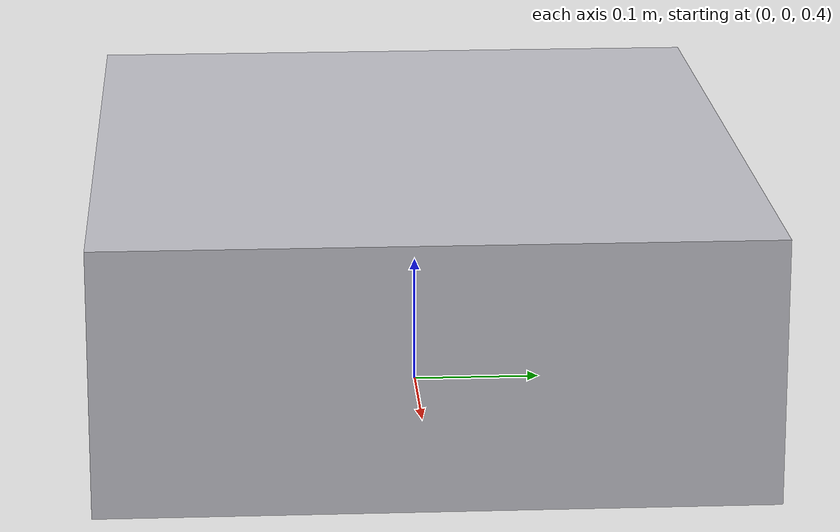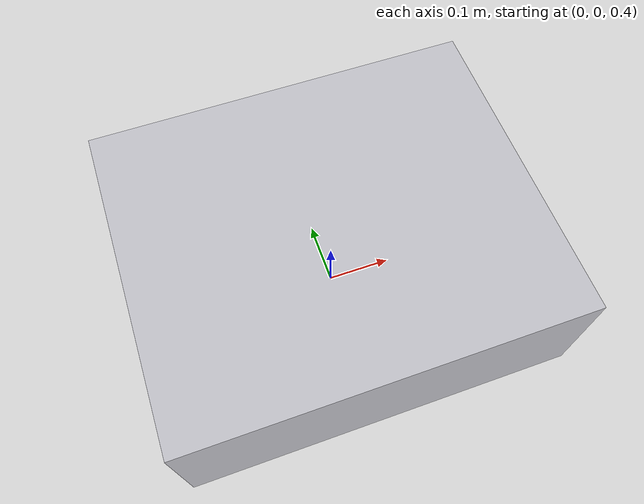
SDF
<?xml version="1.0" ?>
<sdf version="1.5">
  <model name="rocker_bogie">
    <pose>0 0 0.5 0 0 0</pose>
    <static>false</static>

    <link name="base_link">
      <inertial>
        <mass>12.548</mass>
        <pose>0.2 0.1 0.451 0 0 0</pose>
        <inertia>
          <ixx>0.08978</ixx>
          <ixy>0.0</ixy>
          <ixz>6e-06</ixz>
          <iyy>0.224081</iyy>
          <iyz>0.0</iyz>
          <izz>0.272077</izz>
        </inertia>
      </inertial>
      <collision name="collision">
        <pose>0.2 0.1 0.45 0 0 0</pose>
        <geometry>
          <box>
            <size>0.60 0.50 0.20</size>
          </box>
        </geometry>
      </collision>
      <visual name="base_visual">
        <pose>0 0 0 0 0 0</pose>
        <geometry>
          <box>
            <size>0.60 0.50 0.20</size>
          </box>
        </geometry>
        <material>
          <script>
            <name>Gazebo/Silver</name>
          </script>
        </material>
      </visual>
    </link>
  </model>
</sdf>
